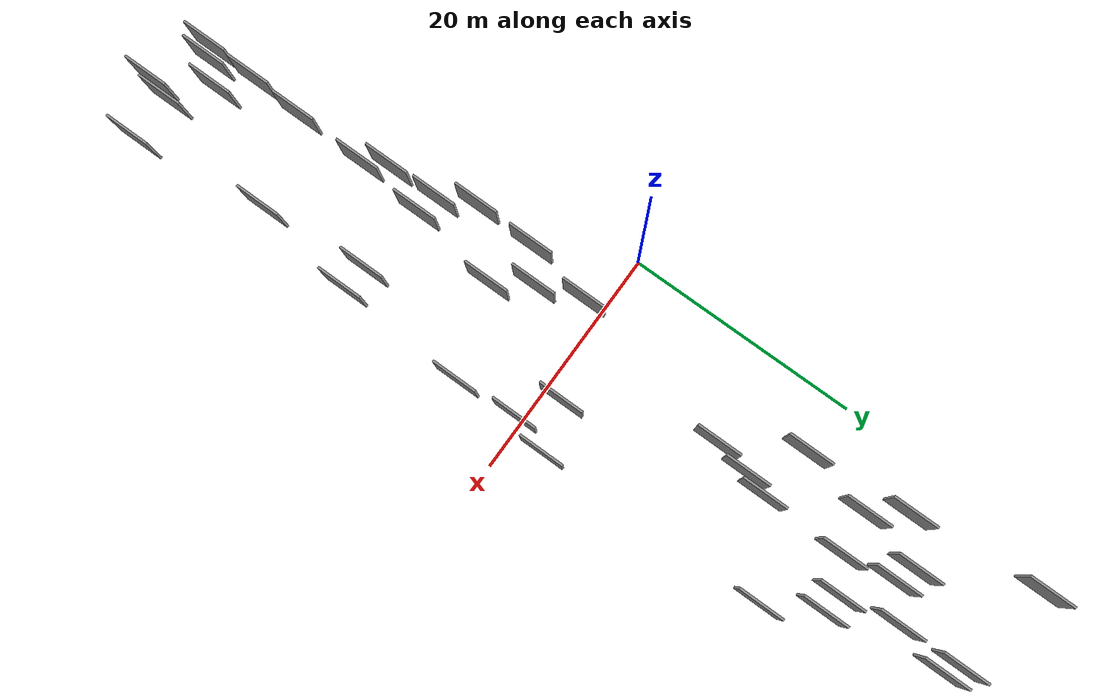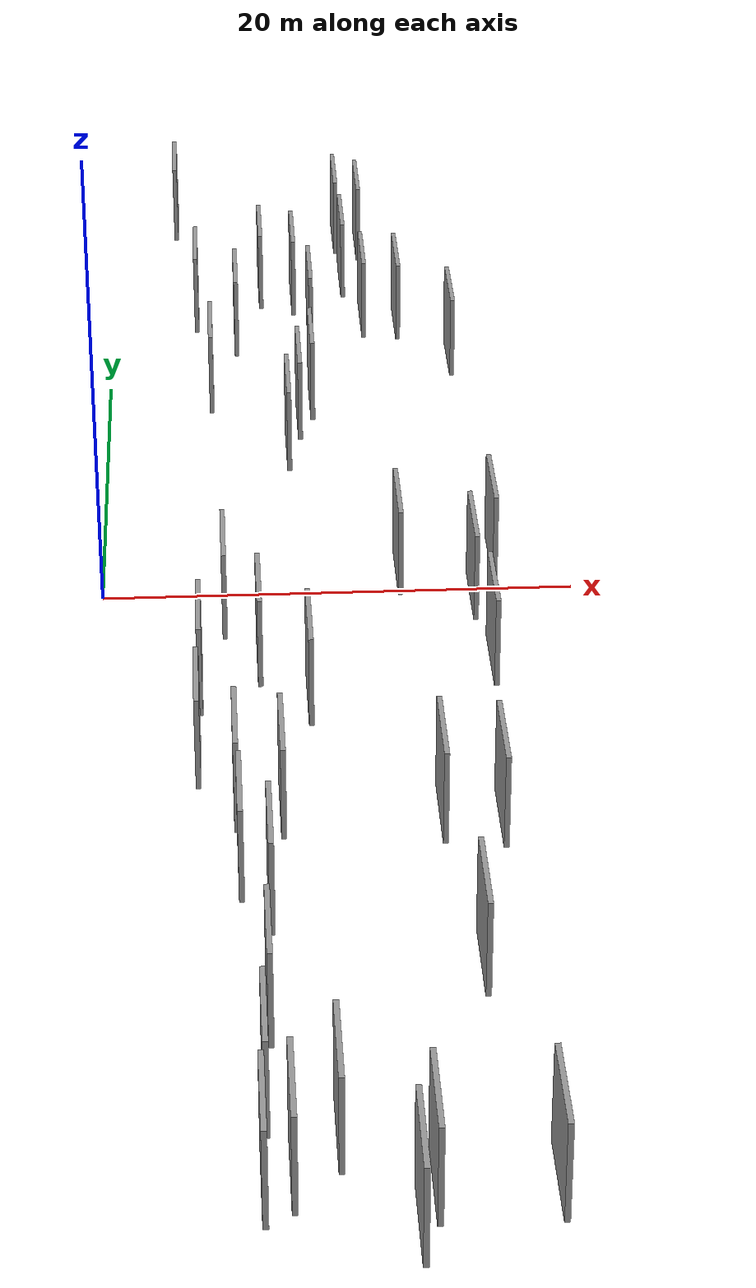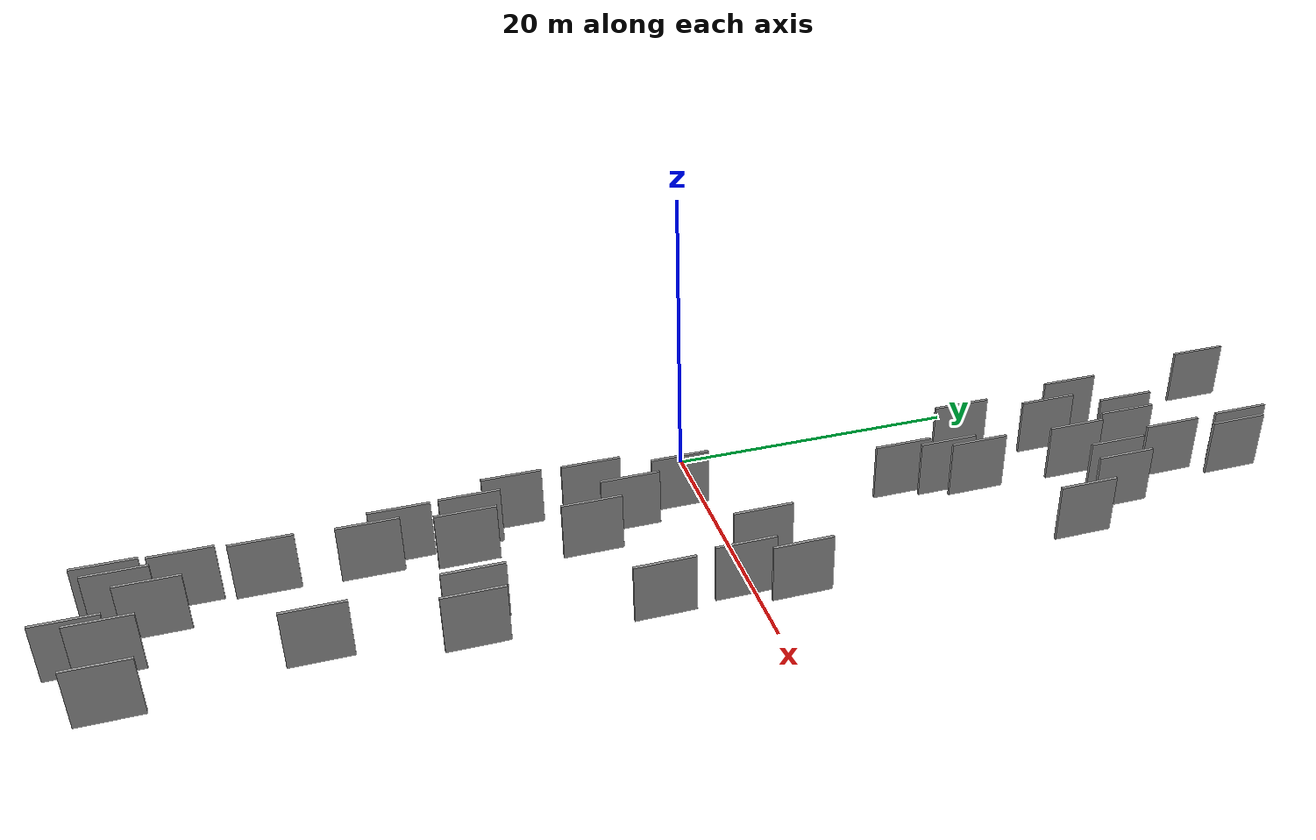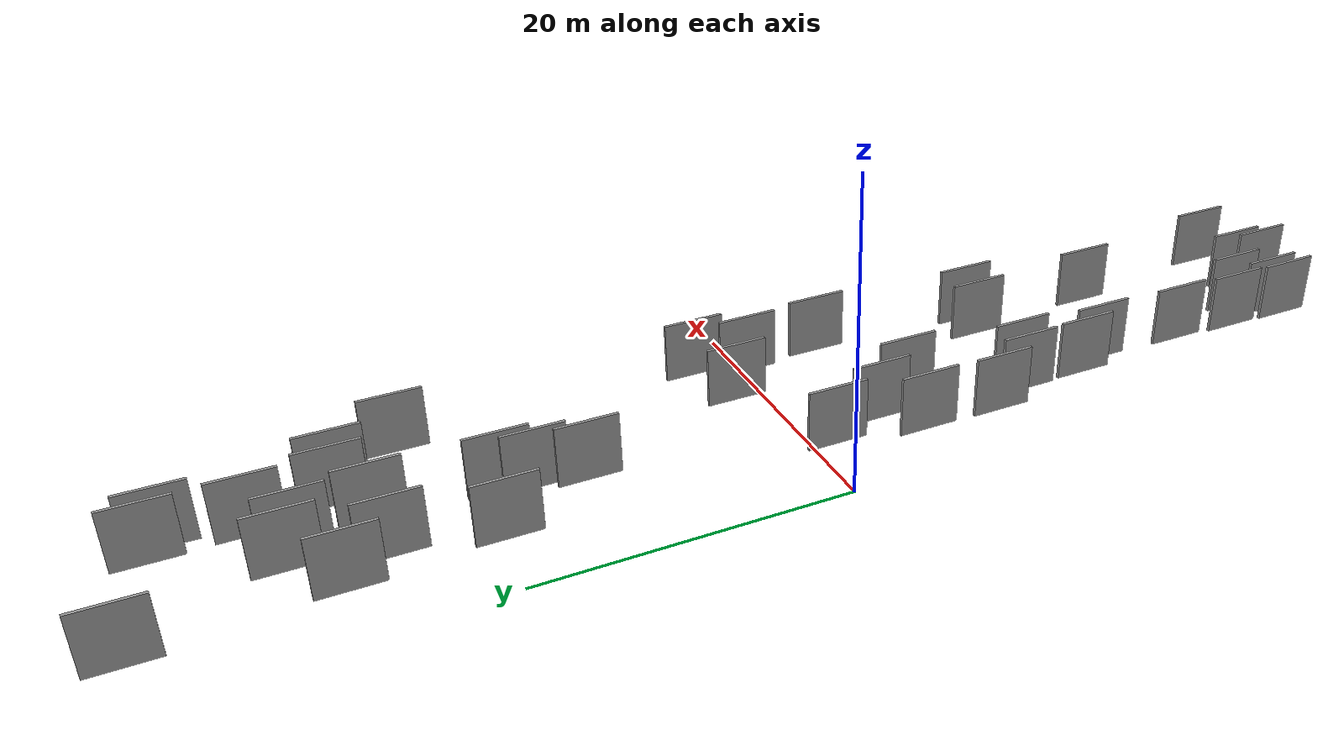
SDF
<sdf version="1.6">
 <world name="default">
  <scene>
   <sky><clouds><speed>12</speed></clouds></sky>
   <ambient>0.4 0.4 0.4 1</ambient>
   <background>0.7 0.7 0.7 1</background>
   <shadows>1</shadows>
  </scene>
  <gravity>0 0 -9.8066</gravity>
  <magnetic_field>6e-06 2.3e-05 -4.2e-05</magnetic_field>
  <physics default="0" name="default_physics" type="ode">
   <ode>
    <solver>
     <type>quick</type>
     <iters>10</iters>
     <sor>1.0</sor>
     <use_dynamic_moi_rescaling>0</use_dynamic_moi_rescaling>
    </solver>
    <constraints>
     <cfm>0</cfm>
     <erp>0.2</erp>
     <contact_max_correcting_vel>100</contact_max_correcting_vel>
     <contact_surface_layer>0.001</contact_surface_layer>
    </constraints>
   </ode>
   <max_step_size>0.004</max_step_size>
   <real_time_factor>1</real_time_factor>
   <real_time_update_rate>250</real_time_update_rate>
  </physics>
  <light name="sun" type="directional">
   <pose>0 0 10 0 0 0</pose>
   <diffuse>0.8 0.8 0.8 1</diffuse>
   <specular>0.2 0.2 0.2 1</specular>
   <attenuation>
    <range>1000</range>
    <constant>0.9</constant>
    <linear>0.01</linear>
    <quadratic>0.001</quadratic>
   </attenuation>
   <direction>-0.5 0.1 -0.9</direction>
  </light>
  <model name="grey_wall_1">
   <static>1</static>
   <pose>14.0933 26.8934 0.0 0.000000 0.000000 1.570796</pose>
   <link name="link">
    <pose>0 0 2.00 0 0 0</pose>
    <collision name="collision"><geometry><box><size>4.00 0.2 4.00</size></box></geometry></collision>
    <visual name="visual">
     <cast_shadows>0</cast_shadows>
     <geometry><box><size>4.00 0.2 4.00</size></box></geometry>
     <material>
      <script>
       <uri>model://grey_wall/materials/scripts</uri>
       <uri>model://grey_wall/materials/textures</uri>
       <name>vrc/grey_wall</name>
      </script>
     </material>
    </visual>
   </link>
  </model>
  <model name="grey_wall_2">
   <static>1</static>
   <pose>10.8420 -39.9444 0.0 0.000000 0.000000 1.570796</pose>
   <link name="link">
    <pose>0 0 2.00 0 0 0</pose>
    <collision name="collision"><geometry><box><size>4.00 0.2 4.00</size></box></geometry></collision>
    <visual name="visual">
     <cast_shadows>0</cast_shadows>
     <geometry><box><size>4.00 0.2 4.00</size></box></geometry>
     <material>
      <script>
       <uri>model://grey_wall/materials/scripts</uri>
       <uri>model://grey_wall/materials/textures</uri>
       <name>vrc/grey_wall</name>
      </script>
     </material>
    </visual>
   </link>
  </model>
  <model name="grey_wall_3">
   <static>1</static>
   <pose>6.5179 -5.4441 0.0 0.000000 0.000000 1.570796</pose>
   <link name="link">
    <pose>0 0 2.00 0 0 0</pose>
    <collision name="collision"><geometry><box><size>4.00 0.2 4.00</size></box></geometry></collision>
    <visual name="visual">
     <cast_shadows>0</cast_shadows>
     <geometry><box><size>4.00 0.2 4.00</size></box></geometry>
     <material>
      <script>
       <uri>model://grey_wall/materials/scripts</uri>
       <uri>model://grey_wall/materials/textures</uri>
       <name>vrc/grey_wall</name>
      </script>
     </material>
    </visual>
   </link>
  </model>
  <model name="grey_wall_4">
   <static>1</static>
   <pose>9.0291 30.0186 0.0 0.000000 0.000000 1.570796</pose>
   <link name="link">
    <pose>0 0 2.00 0 0 0</pose>
    <collision name="collision"><geometry><box><size>4.00 0.2 4.00</size></box></geometry></collision>
    <visual name="visual">
     <cast_shadows>0</cast_shadows>
     <geometry><box><size>4.00 0.2 4.00</size></box></geometry>
     <material>
      <script>
       <uri>model://grey_wall/materials/scripts</uri>
       <uri>model://grey_wall/materials/textures</uri>
       <name>vrc/grey_wall</name>
      </script>
     </material>
    </visual>
   </link>
  </model>
  <model name="grey_wall_5">
   <static>1</static>
   <pose>3.9470 -12.8075 0.0 0.000000 0.000000 1.570796</pose>
   <link name="link">
    <pose>0 0 2.00 0 0 0</pose>
    <collision name="collision"><geometry><box><size>4.00 0.2 4.00</size></box></geometry></collision>
    <visual name="visual">
     <cast_shadows>0</cast_shadows>
     <geometry><box><size>4.00 0.2 4.00</size></box></geometry>
     <material>
      <script>
       <uri>model://grey_wall/materials/scripts</uri>
       <uri>model://grey_wall/materials/textures</uri>
       <name>vrc/grey_wall</name>
      </script>
     </material>
    </visual>
   </link>
  </model>
  <model name="grey_wall_6">
   <static>1</static>
   <pose>5.4789 -20.3172 0.0 0.000000 0.000000 1.570796</pose>
   <link name="link">
    <pose>0 0 2.00 0 0 0</pose>
    <collision name="collision"><geometry><box><size>4.00 0.2 4.00</size></box></geometry></collision>
    <visual name="visual">
     <cast_shadows>0</cast_shadows>
     <geometry><box><size>4.00 0.2 4.00</size></box></geometry>
     <material>
      <script>
       <uri>model://grey_wall/materials/scripts</uri>
       <uri>model://grey_wall/materials/textures</uri>
       <name>vrc/grey_wall</name>
      </script>
     </material>
    </visual>
   </link>
  </model>
  <model name="grey_wall_7">
   <static>1</static>
   <pose>13.1895 -16.9436 0.0 0.000000 0.000000 1.570796</pose>
   <link name="link">
    <pose>0 0 2.00 0 0 0</pose>
    <collision name="collision"><geometry><box><size>4.00 0.2 4.00</size></box></geometry></collision>
    <visual name="visual">
     <cast_shadows>0</cast_shadows>
     <geometry><box><size>4.00 0.2 4.00</size></box></geometry>
     <material>
      <script>
       <uri>model://grey_wall/materials/scripts</uri>
       <uri>model://grey_wall/materials/textures</uri>
       <name>vrc/grey_wall</name>
      </script>
     </material>
    </visual>
   </link>
  </model>
  <model name="grey_wall_8">
   <static>1</static>
   <pose>6.3228 -28.8273 0.0 0.000000 0.000000 1.570796</pose>
   <link name="link">
    <pose>0 0 2.00 0 0 0</pose>
    <collision name="collision"><geometry><box><size>4.00 0.2 4.00</size></box></geometry></collision>
    <visual name="visual">
     <cast_shadows>0</cast_shadows>
     <geometry><box><size>4.00 0.2 4.00</size></box></geometry>
     <material>
      <script>
       <uri>model://grey_wall/materials/scripts</uri>
       <uri>model://grey_wall/materials/textures</uri>
       <name>vrc/grey_wall</name>
      </script>
     </material>
    </visual>
   </link>
  </model>
  <model name="grey_wall_9">
   <static>1</static>
   <pose>6.0902 25.4037 0.0 0.000000 0.000000 1.570796</pose>
   <link name="link">
    <pose>0 0 2.00 0 0 0</pose>
    <collision name="collision"><geometry><box><size>4.00 0.2 4.00</size></box></geometry></collision>
    <visual name="visual">
     <cast_shadows>0</cast_shadows>
     <geometry><box><size>4.00 0.2 4.00</size></box></geometry>
     <material>
      <script>
       <uri>model://grey_wall/materials/scripts</uri>
       <uri>model://grey_wall/materials/textures</uri>
       <name>vrc/grey_wall</name>
      </script>
     </material>
    </visual>
   </link>
  </model>
  <model name="grey_wall_10">
   <static>1</static>
   <pose>8.2952 13.2412 0.0 0.000000 0.000000 1.570796</pose>
   <link name="link">
    <pose>0 0 2.00 0 0 0</pose>
    <collision name="collision"><geometry><box><size>4.00 0.2 4.00</size></box></geometry></collision>
    <visual name="visual">
     <cast_shadows>0</cast_shadows>
     <geometry><box><size>4.00 0.2 4.00</size></box></geometry>
     <material>
      <script>
       <uri>model://grey_wall/materials/scripts</uri>
       <uri>model://grey_wall/materials/textures</uri>
       <name>vrc/grey_wall</name>
      </script>
     </material>
    </visual>
   </link>
  </model>
  <model name="grey_wall_11">
   <static>1</static>
   <pose>16.1014 -5.8815 0.0 0.000000 0.000000 1.570796</pose>
   <link name="link">
    <pose>0 0 2.00 0 0 0</pose>
    <collision name="collision"><geometry><box><size>4.00 0.2 4.00</size></box></geometry></collision>
    <visual name="visual">
     <cast_shadows>0</cast_shadows>
     <geometry><box><size>4.00 0.2 4.00</size></box></geometry>
     <material>
      <script>
       <uri>model://grey_wall/materials/scripts</uri>
       <uri>model://grey_wall/materials/textures</uri>
       <name>vrc/grey_wall</name>
      </script>
     </material>
    </visual>
   </link>
  </model>
  <model name="grey_wall_12">
   <static>1</static>
   <pose>11.4722 37.5668 0.0 0.000000 0.000000 1.570796</pose>
   <link name="link">
    <pose>0 0 2.00 0 0 0</pose>
    <collision name="collision"><geometry><box><size>4.00 0.2 4.00</size></box></geometry></collision>
    <visual name="visual">
     <cast_shadows>0</cast_shadows>
     <geometry><box><size>4.00 0.2 4.00</size></box></geometry>
     <material>
      <script>
       <uri>model://grey_wall/materials/scripts</uri>
       <uri>model://grey_wall/materials/textures</uri>
       <name>vrc/grey_wall</name>
      </script>
     </material>
    </visual>
   </link>
  </model>
  <model name="grey_wall_13">
   <static>1</static>
   <pose>7.4066 30.8573 0.0 0.000000 0.000000 1.570796</pose>
   <link name="link">
    <pose>0 0 2.00 0 0 0</pose>
    <collision name="collision"><geometry><box><size>4.00 0.2 4.00</size></box></geometry></collision>
    <visual name="visual">
     <cast_shadows>0</cast_shadows>
     <geometry><box><size>4.00 0.2 4.00</size></box></geometry>
     <material>
      <script>
       <uri>model://grey_wall/materials/scripts</uri>
       <uri>model://grey_wall/materials/textures</uri>
       <name>vrc/grey_wall</name>
      </script>
     </material>
    </visual>
   </link>
  </model>
  <model name="grey_wall_14">
   <static>1</static>
   <pose>7.1376 -16.3707 0.0 0.000000 0.000000 1.570796</pose>
   <link name="link">
    <pose>0 0 2.00 0 0 0</pose>
    <collision name="collision"><geometry><box><size>4.00 0.2 4.00</size></box></geometry></collision>
    <visual name="visual">
     <cast_shadows>0</cast_shadows>
     <geometry><box><size>4.00 0.2 4.00</size></box></geometry>
     <material>
      <script>
       <uri>model://grey_wall/materials/scripts</uri>
       <uri>model://grey_wall/materials/textures</uri>
       <name>vrc/grey_wall</name>
      </script>
     </material>
    </visual>
   </link>
  </model>
  <model name="grey_wall_15">
   <static>1</static>
   <pose>15.6991 -0.5692 0.0 0.000000 0.000000 1.570796</pose>
   <link name="link">
    <pose>0 0 2.00 0 0 0</pose>
    <collision name="collision"><geometry><box><size>4.00 0.2 4.00</size></box></geometry></collision>
    <visual name="visual">
     <cast_shadows>0</cast_shadows>
     <geometry><box><size>4.00 0.2 4.00</size></box></geometry>
     <material>
      <script>
       <uri>model://grey_wall/materials/scripts</uri>
       <uri>model://grey_wall/materials/textures</uri>
       <name>vrc/grey_wall</name>
      </script>
     </material>
    </visual>
   </link>
  </model>
  <model name="grey_wall_16">
   <static>1</static>
   <pose>5.9000 -37.9345 0.0 0.000000 0.000000 1.570796</pose>
   <link name="link">
    <pose>0 0 2.00 0 0 0</pose>
    <collision name="collision"><geometry><box><size>4.00 0.2 4.00</size></box></geometry></collision>
    <visual name="visual">
     <cast_shadows>0</cast_shadows>
     <geometry><box><size>4.00 0.2 4.00</size></box></geometry>
     <material>
      <script>
       <uri>model://grey_wall/materials/scripts</uri>
       <uri>model://grey_wall/materials/textures</uri>
       <name>vrc/grey_wall</name>
      </script>
     </material>
    </visual>
   </link>
  </model>
  <model name="grey_wall_17">
   <static>1</static>
   <pose>5.3829 -15.8128 0.0 0.000000 0.000000 1.570796</pose>
   <link name="link">
    <pose>0 0 2.00 0 0 0</pose>
    <collision name="collision"><geometry><box><size>4.00 0.2 4.00</size></box></geometry></collision>
    <visual name="visual">
     <cast_shadows>0</cast_shadows>
     <geometry><box><size>4.00 0.2 4.00</size></box></geometry>
     <material>
      <script>
       <uri>model://grey_wall/materials/scripts</uri>
       <uri>model://grey_wall/materials/textures</uri>
       <name>vrc/grey_wall</name>
      </script>
     </material>
    </visual>
   </link>
  </model>
  <model name="grey_wall_18">
   <static>1</static>
   <pose>16.4602 22.6926 0.0 0.000000 0.000000 1.570796</pose>
   <link name="link">
    <pose>0 0 2.00 0 0 0</pose>
    <collision name="collision"><geometry><box><size>4.00 0.2 4.00</size></box></geometry></collision>
    <visual name="visual">
     <cast_shadows>0</cast_shadows>
     <geometry><box><size>4.00 0.2 4.00</size></box></geometry>
     <material>
      <script>
       <uri>model://grey_wall/materials/scripts</uri>
       <uri>model://grey_wall/materials/textures</uri>
       <name>vrc/grey_wall</name>
      </script>
     </material>
    </visual>
   </link>
  </model>
  <model name="grey_wall_19">
   <static>1</static>
   <pose>12.4256 27.2578 0.0 0.000000 0.000000 1.570796</pose>
   <link name="link">
    <pose>0 0 2.00 0 0 0</pose>
    <collision name="collision"><geometry><box><size>4.00 0.2 4.00</size></box></geometry></collision>
    <visual name="visual">
     <cast_shadows>0</cast_shadows>
     <geometry><box><size>4.00 0.2 4.00</size></box></geometry>
     <material>
      <script>
       <uri>model://grey_wall/materials/scripts</uri>
       <uri>model://grey_wall/materials/textures</uri>
       <name>vrc/grey_wall</name>
      </script>
     </material>
    </visual>
   </link>
  </model>
  <model name="grey_wall_20">
   <static>1</static>
   <pose>8.8920 16.2990 0.0 0.000000 0.000000 1.570796</pose>
   <link name="link">
    <pose>0 0 2.00 0 0 0</pose>
    <collision name="collision"><geometry><box><size>4.00 0.2 4.00</size></box></geometry></collision>
    <visual name="visual">
     <cast_shadows>0</cast_shadows>
     <geometry><box><size>4.00 0.2 4.00</size></box></geometry>
     <material>
      <script>
       <uri>model://grey_wall/materials/scripts</uri>
       <uri>model://grey_wall/materials/textures</uri>
       <name>vrc/grey_wall</name>
      </script>
     </material>
    </visual>
   </link>
  </model>
  <model name="grey_wall_21">
   <static>1</static>
   <pose>9.7380 25.6461 0.0 0.000000 0.000000 1.570796</pose>
   <link name="link">
    <pose>0 0 2.00 0 0 0</pose>
    <collision name="collision"><geometry><box><size>4.00 0.2 4.00</size></box></geometry></collision>
    <visual name="visual">
     <cast_shadows>0</cast_shadows>
     <geometry><box><size>4.00 0.2 4.00</size></box></geometry>
     <material>
      <script>
       <uri>model://grey_wall/materials/scripts</uri>
       <uri>model://grey_wall/materials/textures</uri>
       <name>vrc/grey_wall</name>
      </script>
     </material>
    </visual>
   </link>
  </model>
  <model name="grey_wall_22">
   <static>1</static>
   <pose>3.1246 39.6825 0.0 0.000000 0.000000 1.570796</pose>
   <link name="link">
    <pose>0 0 2.00 0 0 0</pose>
    <collision name="collision"><geometry><box><size>4.00 0.2 4.00</size></box></geometry></collision>
    <visual name="visual">
     <cast_shadows>0</cast_shadows>
     <geometry><box><size>4.00 0.2 4.00</size></box></geometry>
     <material>
      <script>
       <uri>model://grey_wall/materials/scripts</uri>
       <uri>model://grey_wall/materials/textures</uri>
       <name>vrc/grey_wall</name>
      </script>
     </material>
    </visual>
   </link>
  </model>
  <model name="grey_wall_23">
   <static>1</static>
   <pose>6.8528 -37.3187 0.0 0.000000 0.000000 1.570796</pose>
   <link name="link">
    <pose>0 0 2.00 0 0 0</pose>
    <collision name="collision"><geometry><box><size>4.00 0.2 4.00</size></box></geometry></collision>
    <visual name="visual">
     <cast_shadows>0</cast_shadows>
     <geometry><box><size>4.00 0.2 4.00</size></box></geometry>
     <material>
      <script>
       <uri>model://grey_wall/materials/scripts</uri>
       <uri>model://grey_wall/materials/textures</uri>
       <name>vrc/grey_wall</name>
      </script>
     </material>
    </visual>
   </link>
  </model>
  <model name="grey_wall_24">
   <static>1</static>
   <pose>5.1294 -1.6323 0.0 0.000000 0.000000 1.570796</pose>
   <link name="link">
    <pose>0 0 2.00 0 0 0</pose>
    <collision name="collision"><geometry><box><size>4.00 0.2 4.00</size></box></geometry></collision>
    <visual name="visual">
     <cast_shadows>0</cast_shadows>
     <geometry><box><size>4.00 0.2 4.00</size></box></geometry>
     <material>
      <script>
       <uri>model://grey_wall/materials/scripts</uri>
       <uri>model://grey_wall/materials/textures</uri>
       <name>vrc/grey_wall</name>
      </script>
     </material>
    </visual>
   </link>
  </model>
  <model name="grey_wall_25">
   <static>1</static>
   <pose>15.4438 -17.3265 0.0 0.000000 0.000000 1.570796</pose>
   <link name="link">
    <pose>0 0 2.00 0 0 0</pose>
    <collision name="collision"><geometry><box><size>4.00 0.2 4.00</size></box></geometry></collision>
    <visual name="visual">
     <cast_shadows>0</cast_shadows>
     <geometry><box><size>4.00 0.2 4.00</size></box></geometry>
     <material>
      <script>
       <uri>model://grey_wall/materials/scripts</uri>
       <uri>model://grey_wall/materials/textures</uri>
       <name>vrc/grey_wall</name>
      </script>
     </material>
    </visual>
   </link>
  </model>
  <model name="grey_wall_26">
   <static>1</static>
   <pose>13.9778 -26.3686 0.0 0.000000 0.000000 1.570796</pose>
   <link name="link">
    <pose>0 0 2.00 0 0 0</pose>
    <collision name="collision"><geometry><box><size>4.00 0.2 4.00</size></box></geometry></collision>
    <visual name="visual">
     <cast_shadows>0</cast_shadows>
     <geometry><box><size>4.00 0.2 4.00</size></box></geometry>
     <material>
      <script>
       <uri>model://grey_wall/materials/scripts</uri>
       <uri>model://grey_wall/materials/textures</uri>
       <name>vrc/grey_wall</name>
      </script>
     </material>
    </visual>
   </link>
  </model>
  <model name="grey_wall_27">
   <static>1</static>
   <pose>4.1458 28.2327 0.0 0.000000 0.000000 1.570796</pose>
   <link name="link">
    <pose>0 0 2.00 0 0 0</pose>
    <collision name="collision"><geometry><box><size>4.00 0.2 4.00</size></box></geometry></collision>
    <visual name="visual">
     <cast_shadows>0</cast_shadows>
     <geometry><box><size>4.00 0.2 4.00</size></box></geometry>
     <material>
      <script>
       <uri>model://grey_wall/materials/scripts</uri>
       <uri>model://grey_wall/materials/textures</uri>
       <name>vrc/grey_wall</name>
      </script>
     </material>
    </visual>
   </link>
  </model>
  <model name="grey_wall_28">
   <static>1</static>
   <pose>12.6117 36.6488 0.0 0.000000 0.000000 1.570796</pose>
   <link name="link">
    <pose>0 0 2.00 0 0 0</pose>
    <collision name="collision"><geometry><box><size>4.00 0.2 4.00</size></box></geometry></collision>
    <visual name="visual">
     <cast_shadows>0</cast_shadows>
     <geometry><box><size>4.00 0.2 4.00</size></box></geometry>
     <material>
      <script>
       <uri>model://grey_wall/materials/scripts</uri>
       <uri>model://grey_wall/materials/textures</uri>
       <name>vrc/grey_wall</name>
      </script>
     </material>
    </visual>
   </link>
  </model>
  <model name="grey_wall_29">
   <static>1</static>
   <pose>16.7908 2.7778 0.0 0.000000 0.000000 1.570796</pose>
   <link name="link">
    <pose>0 0 2.00 0 0 0</pose>
    <collision name="collision"><geometry><box><size>4.00 0.2 4.00</size></box></geometry></collision>
    <visual name="visual">
     <cast_shadows>0</cast_shadows>
     <geometry><box><size>4.00 0.2 4.00</size></box></geometry>
     <material>
      <script>
       <uri>model://grey_wall/materials/scripts</uri>
       <uri>model://grey_wall/materials/textures</uri>
       <name>vrc/grey_wall</name>
      </script>
     </material>
    </visual>
   </link>
  </model>
  <model name="grey_wall_30">
   <static>1</static>
   <pose>15.4554 -38.0920 0.0 0.000000 0.000000 1.570796</pose>
   <link name="link">
    <pose>0 0 2.00 0 0 0</pose>
    <collision name="collision"><geometry><box><size>4.00 0.2 4.00</size></box></geometry></collision>
    <visual name="visual">
     <cast_shadows>0</cast_shadows>
     <geometry><box><size>4.00 0.2 4.00</size></box></geometry>
     <material>
      <script>
       <uri>model://grey_wall/materials/scripts</uri>
       <uri>model://grey_wall/materials/textures</uri>
       <name>vrc/grey_wall</name>
      </script>
     </material>
    </visual>
   </link>
  </model>
  <model name="grey_wall_31">
   <static>1</static>
   <pose>4.8021 19.2512 0.0 0.000000 0.000000 1.570796</pose>
   <link name="link">
    <pose>0 0 2.00 0 0 0</pose>
    <collision name="collision"><geometry><box><size>4.00 0.2 4.00</size></box></geometry></collision>
    <visual name="visual">
     <cast_shadows>0</cast_shadows>
     <geometry><box><size>4.00 0.2 4.00</size></box></geometry>
     <material>
      <script>
       <uri>model://grey_wall/materials/scripts</uri>
       <uri>model://grey_wall/materials/textures</uri>
       <name>vrc/grey_wall</name>
      </script>
     </material>
    </visual>
   </link>
  </model>
  <model name="grey_wall_32">
   <static>1</static>
   <pose>8.4743 -8.5097 0.0 0.000000 0.000000 1.570796</pose>
   <link name="link">
    <pose>0 0 2.00 0 0 0</pose>
    <collision name="collision"><geometry><box><size>4.00 0.2 4.00</size></box></geometry></collision>
    <visual name="visual">
     <cast_shadows>0</cast_shadows>
     <geometry><box><size>4.00 0.2 4.00</size></box></geometry>
     <material>
      <script>
       <uri>model://grey_wall/materials/scripts</uri>
       <uri>model://grey_wall/materials/textures</uri>
       <name>vrc/grey_wall</name>
      </script>
     </material>
    </visual>
   </link>
  </model>
  <model name="grey_wall_33">
   <static>1</static>
   <pose>11.4259 -38.0892 0.0 0.000000 0.000000 1.570796</pose>
   <link name="link">
    <pose>0 0 2.00 0 0 0</pose>
    <collision name="collision"><geometry><box><size>4.00 0.2 4.00</size></box></geometry></collision>
    <visual name="visual">
     <cast_shadows>0</cast_shadows>
     <geometry><box><size>4.00 0.2 4.00</size></box></geometry>
     <material>
      <script>
       <uri>model://grey_wall/materials/scripts</uri>
       <uri>model://grey_wall/materials/textures</uri>
       <name>vrc/grey_wall</name>
      </script>
     </material>
    </visual>
   </link>
  </model>
  <model name="grey_wall_34">
   <static>1</static>
   <pose>8.4274 -35.4603 0.0 0.000000 0.000000 1.570796</pose>
   <link name="link">
    <pose>0 0 2.00 0 0 0</pose>
    <collision name="collision"><geometry><box><size>4.00 0.2 4.00</size></box></geometry></collision>
    <visual name="visual">
     <cast_shadows>0</cast_shadows>
     <geometry><box><size>4.00 0.2 4.00</size></box></geometry>
     <material>
      <script>
       <uri>model://grey_wall/materials/scripts</uri>
       <uri>model://grey_wall/materials/textures</uri>
       <name>vrc/grey_wall</name>
      </script>
     </material>
    </visual>
   </link>
  </model>
  <model name="grey_wall_35">
   <static>1</static>
   <pose>12.6540 1.6313 0.0 0.000000 0.000000 1.570796</pose>
   <link name="link">
    <pose>0 0 2.00 0 0 0</pose>
    <collision name="collision"><geometry><box><size>4.00 0.2 4.00</size></box></geometry></collision>
    <visual name="visual">
     <cast_shadows>0</cast_shadows>
     <geometry><box><size>4.00 0.2 4.00</size></box></geometry>
     <material>
      <script>
       <uri>model://grey_wall/materials/scripts</uri>
       <uri>model://grey_wall/materials/textures</uri>
       <name>vrc/grey_wall</name>
      </script>
     </material>
    </visual>
   </link>
  </model>
  <model name="grey_wall_36">
   <static>1</static>
   <pose>4.0652 -7.4992 0.0 0.000000 0.000000 1.570796</pose>
   <link name="link">
    <pose>0 0 2.00 0 0 0</pose>
    <collision name="collision"><geometry><box><size>4.00 0.2 4.00</size></box></geometry></collision>
    <visual name="visual">
     <cast_shadows>0</cast_shadows>
     <geometry><box><size>4.00 0.2 4.00</size></box></geometry>
     <material>
      <script>
       <uri>model://grey_wall/materials/scripts</uri>
       <uri>model://grey_wall/materials/textures</uri>
       <name>vrc/grey_wall</name>
      </script>
     </material>
    </visual>
   </link>
  </model>
  <model name="grey_wall_37">
   <static>1</static>
   <pose>6.0575 -33.5129 0.0 0.000000 0.000000 1.570796</pose>
   <link name="link">
    <pose>0 0 2.00 0 0 0</pose>
    <collision name="collision"><geometry><box><size>4.00 0.2 4.00</size></box></geometry></collision>
    <visual name="visual">
     <cast_shadows>0</cast_shadows>
     <geometry><box><size>4.00 0.2 4.00</size></box></geometry>
     <material>
      <script>
       <uri>model://grey_wall/materials/scripts</uri>
       <uri>model://grey_wall/materials/textures</uri>
       <name>vrc/grey_wall</name>
      </script>
     </material>
    </visual>
   </link>
  </model>
  <model name="grey_wall_38">
   <static>1</static>
   <pose>9.5474 18.2937 0.0 0.000000 0.000000 1.570796</pose>
   <link name="link">
    <pose>0 0 2.00 0 0 0</pose>
    <collision name="collision"><geometry><box><size>4.00 0.2 4.00</size></box></geometry></collision>
    <visual name="visual">
     <cast_shadows>0</cast_shadows>
     <geometry><box><size>4.00 0.2 4.00</size></box></geometry>
     <material>
      <script>
       <uri>model://grey_wall/materials/scripts</uri>
       <uri>model://grey_wall/materials/textures</uri>
       <name>vrc/grey_wall</name>
      </script>
     </material>
    </visual>
   </link>
  </model>
  <model name="grey_wall_39">
   <static>1</static>
   <pose>11.5958 32.0478 0.0 0.000000 0.000000 1.570796</pose>
   <link name="link">
    <pose>0 0 2.00 0 0 0</pose>
    <collision name="collision"><geometry><box><size>4.00 0.2 4.00</size></box></geometry></collision>
    <visual name="visual">
     <cast_shadows>0</cast_shadows>
     <geometry><box><size>4.00 0.2 4.00</size></box></geometry>
     <material>
      <script>
       <uri>model://grey_wall/materials/scripts</uri>
       <uri>model://grey_wall/materials/textures</uri>
       <name>vrc/grey_wall</name>
      </script>
     </material>
    </visual>
   </link>
  </model>
  <model name="grey_wall_40">
   <static>1</static>
   <pose>6.5389 -22.3924 0.0 0.000000 0.000000 1.570796</pose>
   <link name="link">
    <pose>0 0 2.00 0 0 0</pose>
    <collision name="collision"><geometry><box><size>4.00 0.2 4.00</size></box></geometry></collision>
    <visual name="visual">
     <cast_shadows>0</cast_shadows>
     <geometry><box><size>4.00 0.2 4.00</size></box></geometry>
     <material>
      <script>
       <uri>model://grey_wall/materials/scripts</uri>
       <uri>model://grey_wall/materials/textures</uri>
       <name>vrc/grey_wall</name>
      </script>
     </material>
    </visual>
   </link>
  </model>
 </world>
</sdf>
